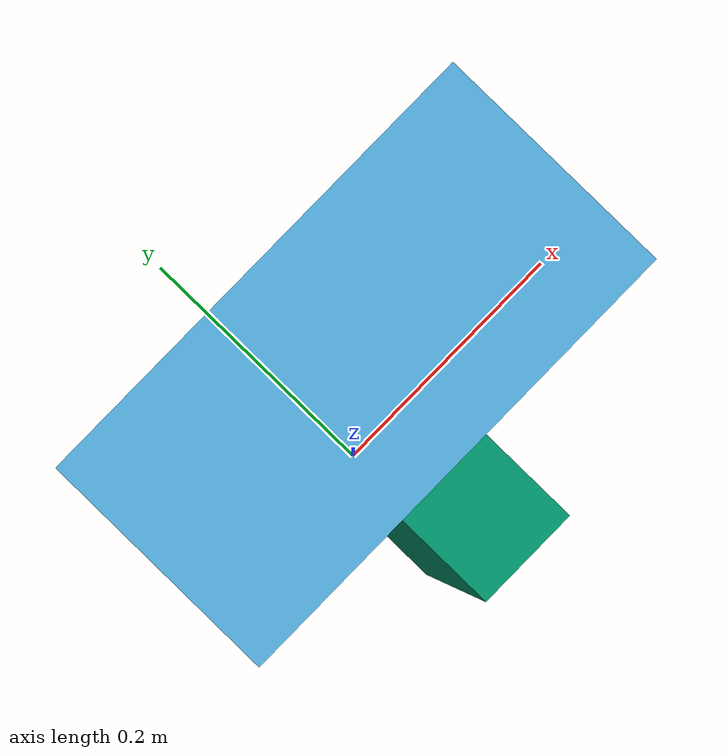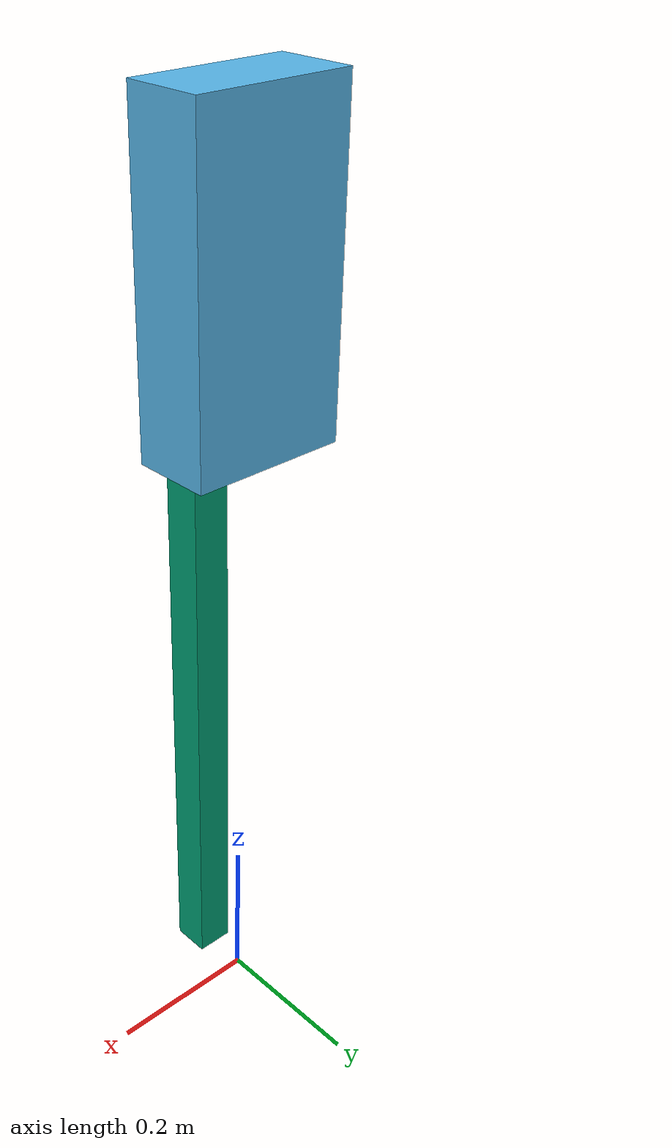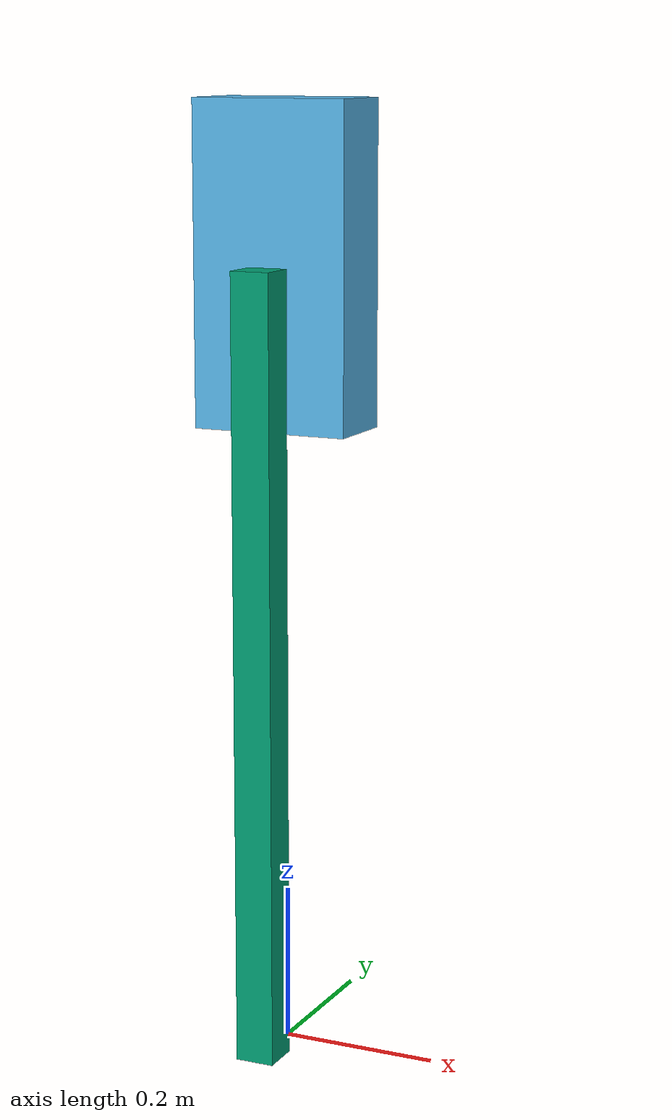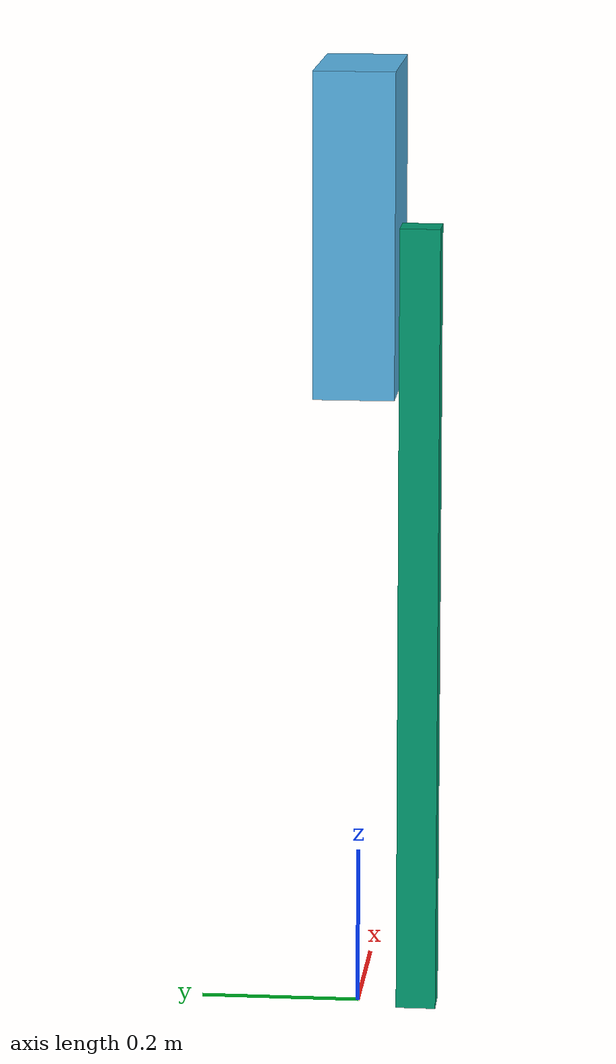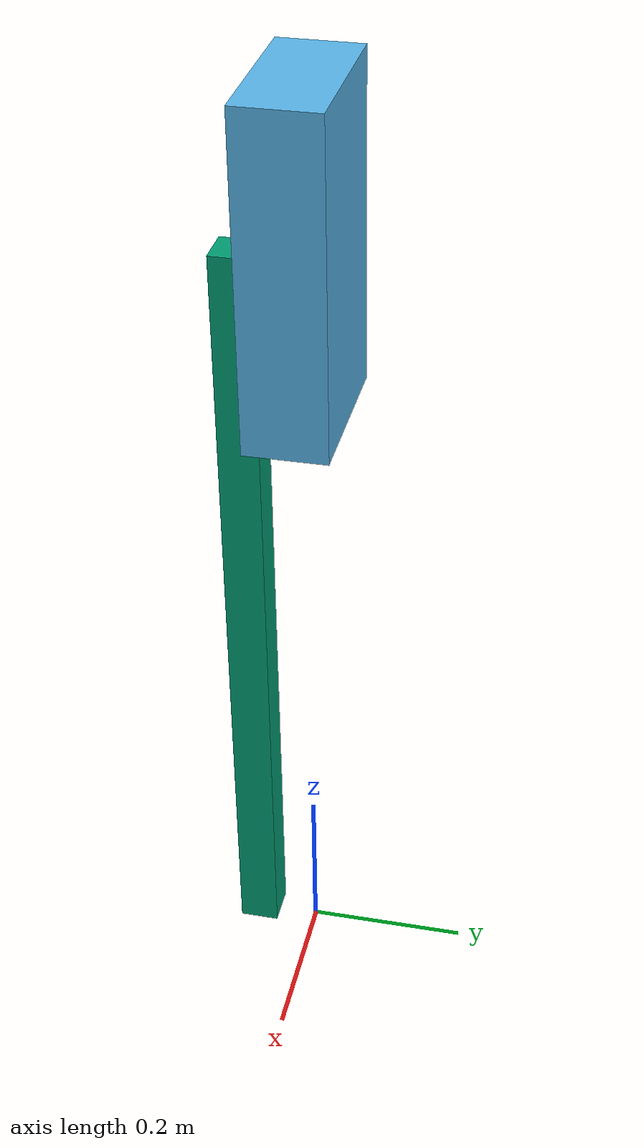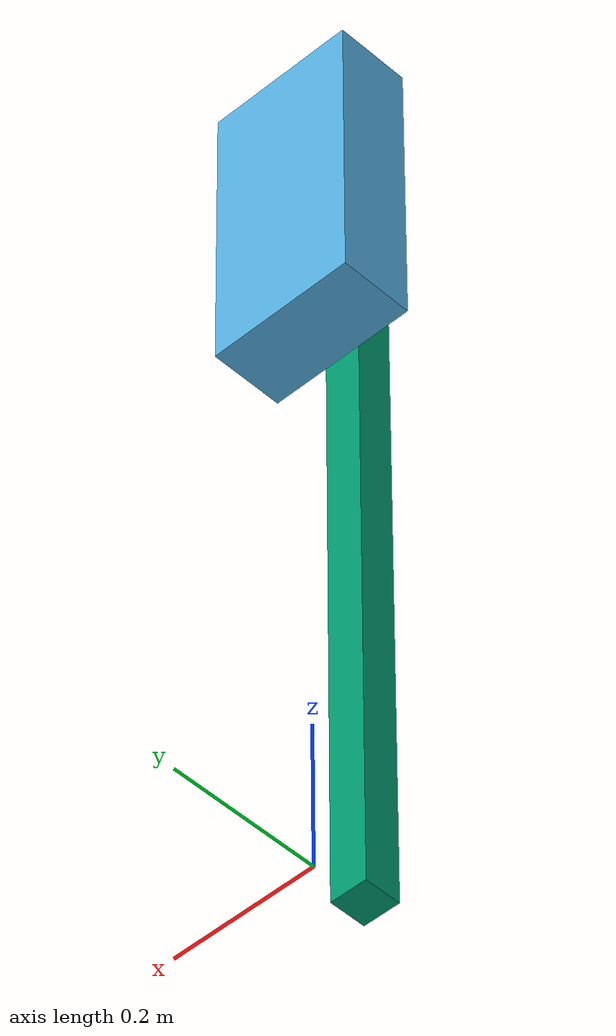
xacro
<?xml version="1.0"?>
<robot xmlns:xacro="http://www.ros.org/wiki/xacro" name="robot">
  <link name="world"/>
  <link name="body">
    <visual>
      <origin rpy="0 0 0" xyz="0 0 0"/>
      <geometry>
        <box size="0.2 0.1 0.4"/>
      </geometry>
    </visual>
    <collision>
      <origin xyz="0 0 0" rpy="0 0 0"/>
      <geometry>
        <box size="0.2 0.1 0.4"/>
      </geometry>
    </collision>
  </link>
  <link name="arm">
    <visual>
      <origin xyz="0 0 -0.5" rpy="0 0 0"/>
      <geometry>
        <box size="0.05 0.05 1.0"/>
      </geometry>
    </visual>
    <collision>
      <origin xyz="0 0 -0.5" rpy="0 0 0"/>
      <geometry>
        <box size="0.05 0.05 1.0"/>
      </geometry>
    </collision>
  </link>

  <joint name="world_to_body" type="fixed">
    <origin rpy="0 0 0" xyz="0 0 1"/>
    <parent link="world"/>
    <child link="body"/>
  </joint>
  <joint name="arm" type="continuous">
    <origin rpy="0 0 0" xyz="0 -0.075 0"/>
    <parent link="body"/>
    <child link="arm"/>
    <axis xyz="0 1 0"/>
  </joint>

  <!-- Import robot ros2_control description -->
  <xacro:include filename="$(find odrive_ros2_control_example)/config/robot.ros2_control.xacro" />
  <xacro:robot_ros2_control/>

</robot>
